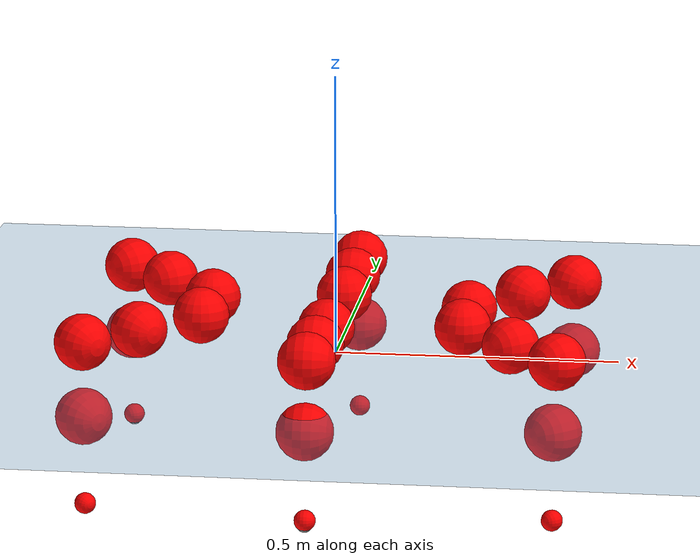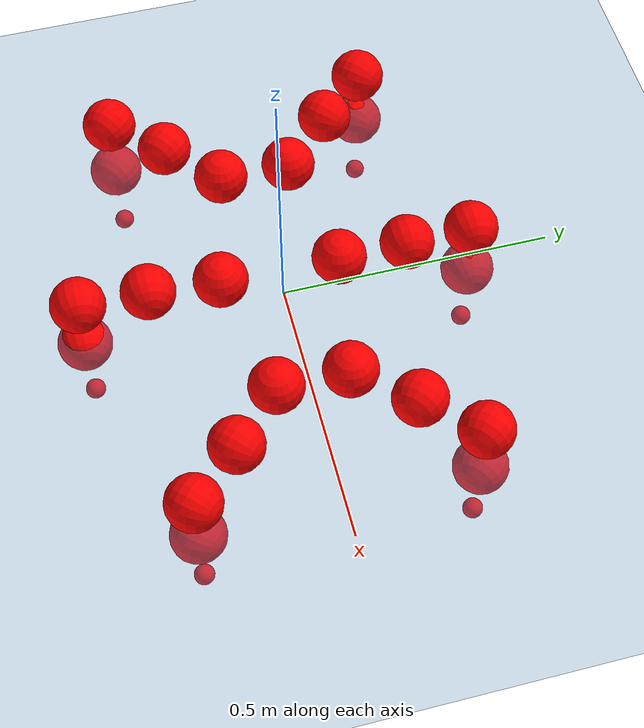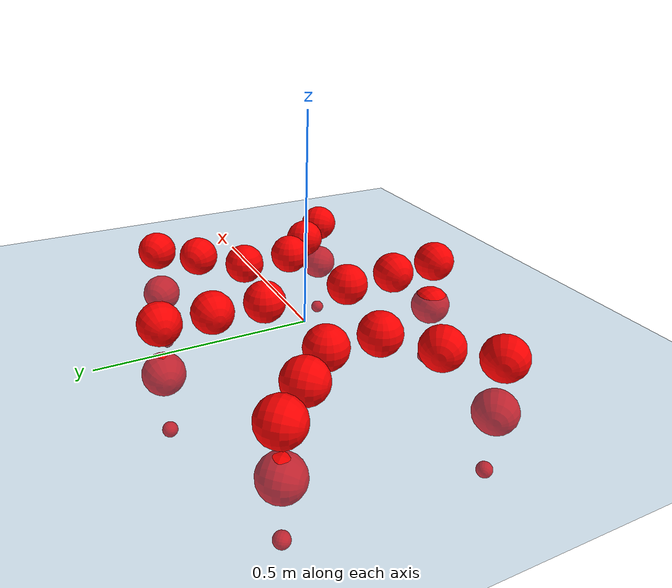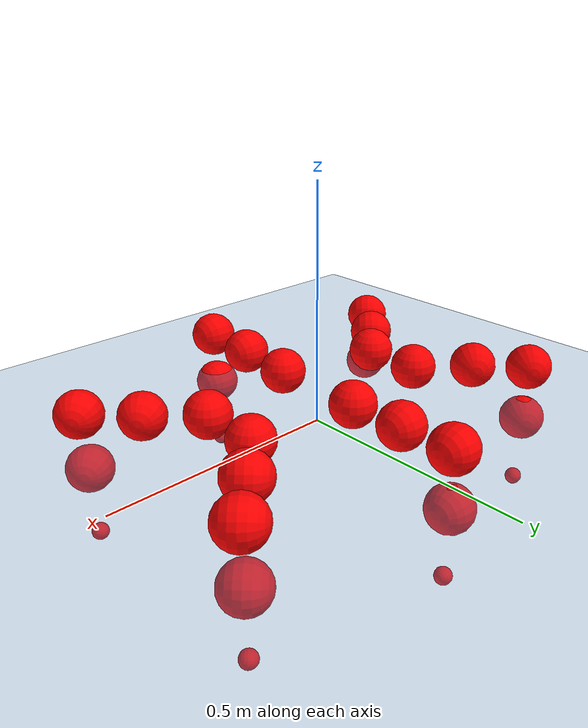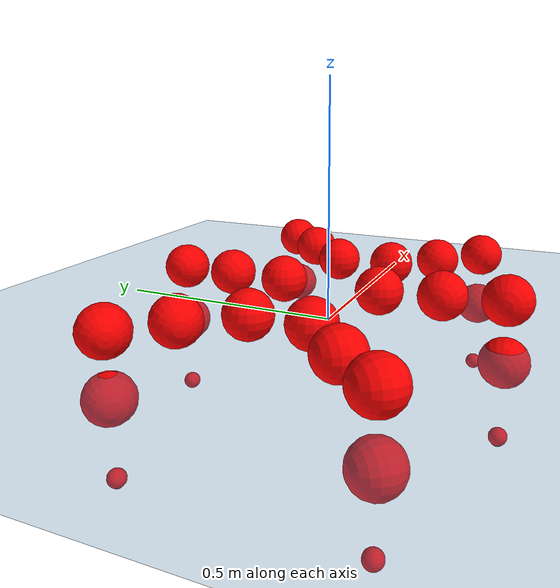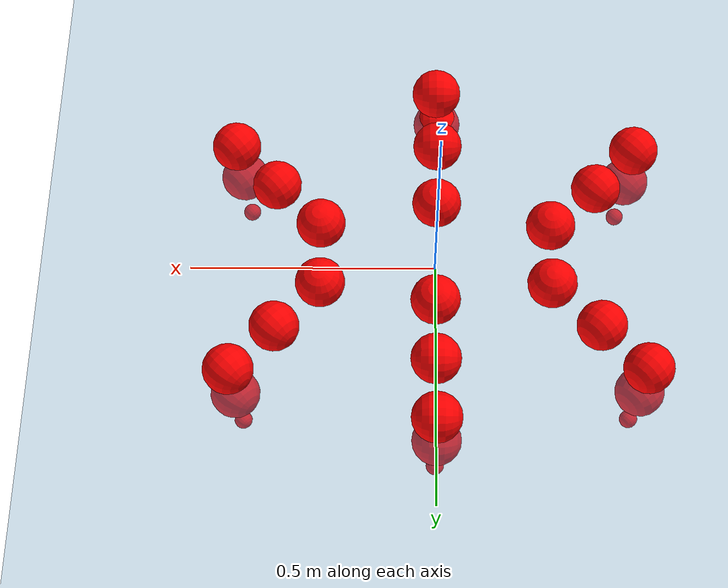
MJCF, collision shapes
<mujoco model="Golem">
  <compiler angle="radian" assetdir="assets" balanceinertia="true" inertiafromgeom="false"/>

  <option timestep="0.005" density="1.2" viscosity="2e-05"/>

  <size nkey="1"/>

  <visual>
    <quality shadowsize="8192"/>
    <map shadowclip="0.5"/>
  </visual>

  <default>
    <default class="/">
      <joint armature="0.01" damping="0.01" frictionloss="0.01"/>
      <geom contype="0" conaffinity="0" group="1" solref="-1000 -80"/>
      <site size="0.01 0.005 0.005" group="5"/>
      <general forcelimited="true" biastype="affine" gainprm="25" biasprm="0 -25 -0.5"/>
      <default class="visual">
        <geom type="mesh" group="2"/>
      </default>
      <default class="collision">
        <geom group="3"/>
      </default>
      <default class="foot">
        <geom size="0.01 0 0" condim="6" group="4" priority="1" solimp="0.015 1 0.01"/>
      </default>
      <default class="reward_collision_sphere">
        <geom group="5" rgba="1 0 0 1"/>
      </default>
    </default>
  </default>

  <asset>
    <texture type="skybox" colorspace="auto" name="//unnamed_texture_0" builtin="gradient" rgb1="0.95 0.95 0.95" rgb2="0.95 0.95 0.95" width="100" height="600"/>
    <texture type="2d" colorspace="auto" name="texplane" builtin="checker" rgb1="0.345 0.575 0.748" rgb2="0.345 0.575 0.748" markrgb="1 1 1" width="512" height="512"/>
    <material name="MatPlane" class="/" texture="texplane" texuniform="true" texrepeat="2 2" specular="0.9"/>
    <mesh name="body" class="/" file="body.stl" scale="0.001 0.001 0.001"/>
    <mesh name="coxa" class="/" file="coxa.stl" scale="0.001 0.001 0.001"/>
    <mesh name="femur" class="/" file="femur.stl" scale="0.001 0.001 0.001"/>
    <mesh name="tibia" class="/" file="tibia.stl" scale="0.001 0.001 0.001"/>
    <mesh name="tarsus" class="/" file="tarsus.stl" scale="0.001 0.001 0.001"/>
  </asset>

  <worldbody>
    <geom name="floor" class="/" size="100 100 0.125" type="plane" group="0" material="MatPlane"/>
    <light name="toplight_shadow" class="/" pos="0 0 5" dir="0.0990148 0.0990148 -0.990148" type="directional" ambient="0.04 0.04 0.04" diffuse="0.55 0.55 0.55" specular="0.12 0.12 0.12"/>
    <light name="toplight_fill" class="/" pos="0 0 5" dir="0.0990148 0.0990148 -0.990148" type="directional" castshadow="false" ambient="0.04 0.04 0.04" diffuse="0.3 0.3 0.3" specular="0.08 0.08 0.08"/>
    <body name="trunk" pos="0.000417744 -0.00021373 0.00240895" quat="1 -3.81414e-05 0.000371751 0.000625154">
      <inertial pos="-0.000166407 0.00210536 0.00452758" quat="1 -4.40166e-05 0.00014937 0.00022137" mass="6.99896" diaginertia="0.0710305 0.0203509 0.0166473"/>
      <joint name="//unnamed_joint_0" type="free"/>
      <geom name="//unnamed_geom_1" class="/" pos="0 0 0.0709207" quat="1 0 0 0" type="mesh" rgba="0.9 0.9 0.9 1" mesh="body"/>
      <site name="imu" class="/" pos="0.179379 -0.00197838 0.113564" size="0.0124136"/>
      <camera name="track" class="/" pos="0 -2.28612 0" quat="0.707107 0.707107 0 0" mode="trackcom"/>
      <camera name="ego_camera" class="/" pos="0.191475 0 0.110814" quat="-0.5 -0.5 0.5 0.5"/>
      <body name="coxa_RR" pos="-0.263012 -0.0923936 0.0746831" quat="0.382233 -0.000493585 -0.00063394 -0.924065">
        <inertial pos="0.000267029 0.0021732 0.00201043" quat="0.999996 -0.00135903 0.000349069 -0.00246542" mass="0.39516" diaginertia="0.0715504 0.0204286 0.0184802"/>
        <joint name="coxa_joint_RR" class="/" pos="0 0 0" axis="0.0091354 0.00482016 -0.999947" stiffness="0.00502214" range="-3.14927 3.10804" armature="0.0109922" damping="0.012305" frictionloss="0.0114261"/>
        <geom name="//unnamed_geom_2" class="/" type="mesh" rgba="0.2 0.2 0.2 1" mesh="coxa"/>
        <geom name="//unnamed_geom_3" class="reward_collision_sphere" size="0.0496544" pos="-0.0441865 0 0"/>
        <body name="femur_RR" pos="0.0854638 -0.00552592 -0.00435965" quat="0.500012 -0.499977 0.499999 0.500012">
          <inertial pos="0.00486117 -0.000303005 0.00597211" quat="0.999659 0.00606065 0.0247756 0.00550765" mass="0.390833" diaginertia="0.0710838 0.0198474 0.0167464"/>
          <joint name="femur_joint_RR" class="/" pos="0 0 0" axis="-0.00349911 0.00405673 -0.999986" range="-3.18635 3.15534" armature="0.0115811" damping="0.0188602" frictionloss="0.0121456"/>
          <geom name="//unnamed_geom_4" class="/" type="mesh" rgba="0.9 0.9 0.9 1" mesh="femur"/>
          <geom name="//unnamed_geom_5" class="reward_collision_sphere" size="0.0496544"/>
          <body name="tibia_RR" pos="6.25698e-05 -0.122087 0.00508514" quat="-0.000550995 1 -0.00022614 -0.0007661">
            <inertial pos="-0.000520643 -0.000666246 0.00288731" quat="0.999999 -0.000563487 0.00122197 -1.64518e-05" mass="0.358376" diaginertia="0.0617445 0.0176467 0.0151955"/>
            <joint name="tibia_joint_RR" class="/" pos="0 0 0" axis="-0.0091629 -0.00484954 0.999946" stiffness="0.00408263" range="-3.14209 3.14852" armature="0.0116004" damping="0" frictionloss="0.0134624"/>
            <geom name="//unnamed_geom_6" class="/" type="mesh" rgba="0.2 0.2 0.2 1" mesh="tibia"/>
            <geom name="//unnamed_geom_7" class="reward_collision_sphere" size="0.0496544"/>
            <body name="tarsus_RR" pos="0.133289 0.000769644 -0.00160667" quat="1 4.94153e-05 4.63756e-05 8.51294e-05">
              <inertial pos="0.0881396 0.000750257 1.70065e-05" quat="0.496844 0.505303 0.516426 0.480747" mass="0.35409" diaginertia="0.0708137 0.0196858 0.0161221"/>
              <joint name="tarsus_joint_RR" class="/" pos="0 0 0" axis="-0.00909416 0.0263306 0.999612" stiffness="0.00866591" range="-3.16214 3.14512" armature="0.0114171" damping="0.0401238" frictionloss="0.0138619"/>
              <geom name="//unnamed_geom_8" class="/" type="mesh" rgba="0.9 0.9 0.9 1" mesh="tarsus"/>
              <geom name="foot_1" class="foot" size="0.0118089" pos="0.164963 0 0" quat="0 -0.707107 0 0.707107"/>
              <geom name="//unnamed_geom_10" class="reward_collision_sphere" size="0.0496544"/>
              <geom name="//unnamed_geom_11" class="reward_collision_sphere" size="0.0186204" pos="0.158335 0 0"/>
              <site name="foot_1" class="foot" pos="0.164963 0 0" quat="0 -0.707107 0 0.707107" size="0.0124136"/>
            </body>
          </body>
        </body>
      </body>
      <body name="coxa_RM" pos="-0.00264202 -0.155643 0.0760447" quat="0.708322 -0.00193862 0.000850711 -0.705886">
        <inertial pos="0.00223294 -6.62282e-05 0.0038379" quat="0.999975 -0.0042366 -0.00562862 0.000140792" mass="0.381069" diaginertia="0.0737067 0.0195973 0.0161255"/>
        <joint name="coxa_joint_RM" class="/" pos="0 0 0" axis="-0.0020468 -0.00146747 -0.999997" range="-3.18749 3.09992" armature="0.0137778" damping="0.0102123" frictionloss="0.01151"/>
        <geom name="//unnamed_geom_12" class="/" type="mesh" rgba="0.2 0.2 0.2 1" mesh="coxa"/>
        <geom name="//unnamed_geom_13" class="reward_collision_sphere" size="0.0496544" pos="-0.0441865 0 0"/>
        <body name="femur_RM" pos="0.0850898 -0.00267419 0.00660215" quat="0.500066 -0.500131 0.499552 0.500251">
          <inertial pos="-0.00415989 -0.00065632 0.000126715" quat="0.999711 -0.0183611 -0.0141157 0.00647472" mass="0.372267" diaginertia="0.071645 0.020097 0.0162838"/>
          <joint name="femur_joint_RM" class="/" pos="0 0 0" axis="0.0112226 -0.00135807 -0.999936" stiffness="0.00036118" range="-3.13495 3.15688" armature="0.0135294" damping="0.0250318" frictionloss="0.0112986"/>
          <geom name="//unnamed_geom_14" class="/" type="mesh" rgba="0.9 0.9 0.9 1" mesh="femur"/>
          <geom name="//unnamed_geom_15" class="reward_collision_sphere" size="0.0496544"/>
          <body name="tibia_RM" pos="-0.00609584 -0.123573 0.00113623" quat="-3.35256e-06 1 9.17928e-05 -0.000269708">
            <inertial pos="0.00493152 0.00174174 -0.000116542" quat="0.999934 -0.00562768 -0.00920911 -0.00403156" mass="0.395759" diaginertia="0.0697078 0.0203803 0.0182131"/>
            <joint name="tibia_joint_RM" class="/" pos="0 0 0" axis="-0.00236663 -0.00175126 0.999996" range="-3.12651 3.10416" armature="0.0118669" damping="0.0161207" frictionloss="0.0112782"/>
            <geom name="//unnamed_geom_16" class="/" type="mesh" rgba="0.2 0.2 0.2 1" mesh="tibia"/>
            <geom name="//unnamed_geom_17" class="reward_collision_sphere" size="0.0496544"/>
            <body name="tarsus_RM" pos="0.124774 0.00182691 0.00256021" quat="1 -0.000551687 -0.000120215 -9.68374e-05">
              <inertial pos="0.0866132 -0.00197793 -0.00123232" quat="0.492727 0.509619 0.499235 0.49827" mass="0.400947" diaginertia="0.0739888 0.0202129 0.0168532"/>
              <joint name="tarsus_joint_RM" class="/" pos="0 0 0" axis="0.0021039 -0.00755261 0.999969" stiffness="0.00302805" range="-3.1124 3.1424" armature="0.012487" damping="0.0190922" frictionloss="0.0132538"/>
              <geom name="//unnamed_geom_18" class="/" type="mesh" rgba="0.9 0.9 0.9 1" mesh="tarsus"/>
              <geom name="foot_2" class="foot" size="0.0140954" pos="0.164963 0 0" quat="0 -0.707107 0 0.707107"/>
              <geom name="//unnamed_geom_20" class="reward_collision_sphere" size="0.0496544"/>
              <geom name="//unnamed_geom_21" class="reward_collision_sphere" size="0.0186204" pos="0.158335 0 0"/>
              <site name="foot_2" class="foot" pos="0.164963 0 0" quat="0 -0.707107 0 0.707107" size="0.0124136"/>
            </body>
          </body>
        </body>
      </body>
      <body name="coxa_RF" pos="0.262258 -0.0979937 0.0711349" quat="0.924091 0.000114559 0.000103093 -0.382173">
        <inertial pos="0.00563781 0.00277175 0.00140468" quat="0.999918 -0.00839794 -0.00836832 -0.00484251" mass="0.358787" diaginertia="0.0709017 0.0209399 0.0172208"/>
        <joint name="coxa_joint_RF" class="/" pos="0 0 0" axis="-0.000991307 -0.00598486 -0.999982" stiffness="0.0039985" range="-3.16956 3.14688" armature="0.0115877" damping="0.0101682" frictionloss="0.0111058"/>
        <geom name="//unnamed_geom_22" class="/" type="mesh" rgba="0.2 0.2 0.2 1" mesh="coxa"/>
        <geom name="//unnamed_geom_23" class="reward_collision_sphere" size="0.0496544" pos="-0.0441865 0 0"/>
        <body name="femur_RF" pos="0.0844803 0.0013233 -0.00388431" quat="0.500057 -0.500634 0.500153 0.499155">
          <inertial pos="0.000349687 -0.00480542 0.000711548" quat="0.999971 0.00751984 0.000709872 -0.000959584" mass="0.381867" diaginertia="0.0684216 0.0199203 0.0161487"/>
          <joint name="femur_joint_RF" class="/" pos="0 0 0" axis="-7.57203e-05 0.000184231 -1" stiffness="0.0232005" range="-3.09029 3.14922" armature="0.0118055" damping="0.0162636" frictionloss="0.010923"/>
          <geom name="//unnamed_geom_24" class="/" type="mesh" rgba="0.9 0.9 0.9 1" mesh="femur"/>
          <geom name="//unnamed_geom_25" class="reward_collision_sphere" size="0.0496544"/>
          <body name="tibia_RF" pos="-0.000715408 -0.125761 -0.00240688" quat="1.28956e-05 1 0.000877099 -0.000185942">
            <inertial pos="0.00386396 0.00132329 -0.00299798" quat="0.999998 0.00146761 0.00016132 -0.00130536" mass="0.37876" diaginertia="0.0702072 0.0199424 0.0167783"/>
            <joint name="tibia_joint_RF" class="/" pos="0 0 0" axis="-0.00920231 -0.0106715 0.999901" stiffness="0.00881872" range="-3.12116 3.1611" armature="0.0110045" damping="0.0428974" frictionloss="0.0130368"/>
            <geom name="//unnamed_geom_26" class="/" type="mesh" rgba="0.2 0.2 0.2 1" mesh="tibia"/>
            <geom name="//unnamed_geom_27" class="reward_collision_sphere" size="0.0496544"/>
            <body name="tarsus_RF" pos="0.12618 -0.00364682 0.00317542" quat="1 -6.25578e-05 9.87485e-05 0.000255428">
              <inertial pos="0.0852697 0.000380976 -0.000798064" quat="0.49364 0.494293 0.507617 0.504301" mass="0.395634" diaginertia="0.0711637 0.0183926 0.0173201"/>
              <joint name="tarsus_joint_RF" class="/" pos="0 0 0" axis="0.00361536 -0.00264255 0.99999" range="-3.15582 3.12713" armature="0.0112047" damping="0" frictionloss="0.00886617"/>
              <geom name="//unnamed_geom_28" class="/" type="mesh" rgba="0.9 0.9 0.9 1" mesh="tarsus"/>
              <geom name="foot_3" class="foot" size="0.0104919" pos="0.164963 0 0" quat="0 -0.707107 0 0.707107"/>
              <geom name="//unnamed_geom_30" class="reward_collision_sphere" size="0.0496544"/>
              <geom name="//unnamed_geom_31" class="reward_collision_sphere" size="0.0186204" pos="0.158335 0 0"/>
              <site name="foot_3" class="foot" pos="0.164963 0 0" quat="0 -0.707107 0 0.707107" size="0.0124136"/>
            </body>
          </body>
        </body>
      </body>
      <body name="coxa_LR" pos="-0.261872 0.0978499 0.0732965" quat="0.383947 0.00119965 3.44483e-05 0.923354">
        <inertial pos="-0.00205546 0.00229329 0.00526702" quat="0.999963 0.00235324 0.00811709 -0.00126438" mass="0.425836" diaginertia="0.0752416 0.021251 0.0186251"/>
        <joint name="coxa_joint_LR" class="/" pos="0 0 0" axis="0.00635571 -0.00118975 -0.999979" range="-3.18444 3.03158" armature="0.0113471" damping="0.0124955" frictionloss="0.0157144"/>
        <geom name="//unnamed_geom_32" class="/" type="mesh" rgba="0.2 0.2 0.2 1" mesh="coxa"/>
        <geom name="//unnamed_geom_33" class="reward_collision_sphere" size="0.0496544" pos="-0.0441865 0 0"/>
        <body name="femur_LR" pos="0.0871247 -0.000127725 0.00483149" quat="0.499173 -0.499937 0.500635 0.500254">
          <inertial pos="-0.000464535 -0.00179144 -0.00146628" quat="0.999998 -0.00118724 -0.00160773 0.000265866" mass="0.38102" diaginertia="0.0674748 0.017988 0.0169212"/>
          <joint name="femur_joint_LR" class="/" pos="0 0 0" axis="0.00672742 0.00474765 0.999966" stiffness="0.00584346" range="-3.11634 3.17233" armature="0.0120542" damping="0.0131099" frictionloss="0.0110095"/>
          <geom name="//unnamed_geom_34" class="/" type="mesh" rgba="0.9 0.9 0.9 1" mesh="femur"/>
          <geom name="//unnamed_geom_35" class="reward_collision_sphere" size="0.0496544"/>
          <body name="tibia_LR" pos="0.00248167 -0.123202 -0.00160649" quat="-0.000475855 1 -8.37863e-05 -0.000706374">
            <inertial pos="-0.000216656 -0.00440807 -0.000186664" quat="0.999951 0.00803281 -0.00287917 -0.00508566" mass="0.381554" diaginertia="0.0633862 0.0186507 0.0175465"/>
            <joint name="tibia_joint_LR" class="/" pos="0 0 0" axis="0.00089093 -0.00179775 -0.999998" range="-3.12985 3.1548" armature="0.0138325" damping="0" frictionloss="0.0126978"/>
            <geom name="//unnamed_geom_36" class="/" type="mesh" rgba="0.2 0.2 0.2 1" mesh="tibia"/>
            <geom name="//unnamed_geom_37" class="reward_collision_sphere" size="0.0496544"/>
            <body name="tarsus_LR" pos="0.126162 -0.000539273 -0.00087204" quat="1 -0.000179132 -2.4416e-05 -0.000671219">
              <inertial pos="0.0872331 0.000268469 -0.00207824" quat="0.503729 0.501459 0.499429 0.495344" mass="0.402855" diaginertia="0.0726563 0.0208783 0.0179482"/>
              <joint name="tarsus_joint_LR" class="/" pos="0 0 0" axis="0.00336004 -0.00230751 -0.999992" range="-3.18769 3.09184" armature="0.0159326" damping="0.0342538" frictionloss="0.0111641"/>
              <geom name="//unnamed_geom_38" class="/" type="mesh" rgba="0.9 0.9 0.9 1" mesh="tarsus"/>
              <geom name="foot_4" class="foot" size="0.0137146" pos="0.164963 0 0" quat="0.707107 0 -0.707107 0"/>
              <geom name="//unnamed_geom_40" class="reward_collision_sphere" size="0.0496544"/>
              <geom name="//unnamed_geom_41" class="reward_collision_sphere" size="0.0186204" pos="0.158335 0 0"/>
              <site name="foot_4" class="foot" pos="0.164963 0 0" quat="0.707107 0 -0.707107 0" size="0.0124136"/>
            </body>
          </body>
        </body>
      </body>
      <body name="coxa_LM" pos="0.000830989 0.147924 0.074971" quat="0.708088 -0.00270034 -0.000973418 0.706118">
        <inertial pos="-0.00250178 0.00347371 -0.000131716" quat="0.999928 -0.00408549 0.00342635 -0.0107355" mass="0.377495" diaginertia="0.0717718 0.0202467 0.0168577"/>
        <joint name="coxa_joint_LM" class="/" pos="0 0 0" axis="0.0070336 -0.00398741 -0.999967" range="-3.13572 3.12785" armature="0.00897903" damping="0.00558551" frictionloss="0.0137553"/>
        <geom name="//unnamed_geom_42" class="/" type="mesh" rgba="0.2 0.2 0.2 1" mesh="coxa"/>
        <geom name="//unnamed_geom_43" class="reward_collision_sphere" size="0.0496544" pos="-0.0441865 0 0"/>
        <body name="femur_LM" pos="0.0816975 0.000656814 0.0016027" quat="0.500068 -0.499797 0.499645 0.500489">
          <inertial pos="0.00223451 -0.000382544 0.00358377" quat="0.999999 -0.000224405 0.000111755 -0.00115977" mass="0.362424" diaginertia="0.0664127 0.0197721 0.0165037"/>
          <joint name="femur_joint_LM" class="/" pos="0 0 0" axis="-0.00804043 -0.00344545 0.999962" stiffness="0.0023547" range="-3.14322 3.18593" armature="0.0121807" damping="0" frictionloss="0.0126209"/>
          <geom name="//unnamed_geom_44" class="/" type="mesh" rgba="0.9 0.9 0.9 1" mesh="femur"/>
          <geom name="//unnamed_geom_45" class="reward_collision_sphere" size="0.0496544"/>
          <body name="tibia_LM" pos="-0.000609042 -0.120268 0.00123215" quat="-0.000445908 1 -0.000214821 0.000756746">
            <inertial pos="-0.00493152 -0.00556025 -0.00595634" quat="0.999996 0.00117291 -0.000226881 -0.00271393" mass="0.37874" diaginertia="0.0673504 0.0200726 0.016243"/>
            <joint name="tibia_joint_LM" class="/" pos="0 0 0" axis="0.00141887 0.00134191 -0.999998" stiffness="0.0100652" range="-3.09177 3.1241" armature="0.0120574" damping="0.00928057" frictionloss="0.0134133"/>
            <geom name="//unnamed_geom_46" class="/" type="mesh" rgba="0.2 0.2 0.2 1" mesh="tibia"/>
            <geom name="//unnamed_geom_47" class="reward_collision_sphere" size="0.0496544"/>
            <body name="tarsus_LM" pos="0.127785 0.00259529 -0.00207112" quat="1 -7.37213e-05 0.000146965 1.70531e-05">
              <inertial pos="0.0902991 0.00174239 -1.95675e-06" quat="0.505217 0.496398 0.494343 0.503955" mass="0.359444" diaginertia="0.0683608 0.0167913 0.015346"/>
              <joint name="tarsus_joint_LM" class="/" pos="0 0 0" axis="-0.0104199 0.00377282 -0.999939" range="-3.00638 3.18251" armature="0.0123818" damping="0.000976125" frictionloss="0.0119823"/>
              <geom name="//unnamed_geom_48" class="/" type="mesh" rgba="0.9 0.9 0.9 1" mesh="tarsus"/>
              <geom name="foot_5" class="foot" size="0.0121494" pos="0.164963 0 0" quat="0.707107 0 -0.707107 0"/>
              <geom name="//unnamed_geom_50" class="reward_collision_sphere" size="0.0496544"/>
              <geom name="//unnamed_geom_51" class="reward_collision_sphere" size="0.0186204" pos="0.158335 0 0"/>
              <site name="foot_5" class="foot" pos="0.164963 0 0" quat="0.707107 0 -0.707107 0" size="0.0124136"/>
            </body>
          </body>
        </body>
      </body>
      <body name="coxa_LF" pos="0.260751 0.0950666 0.068107" quat="0.923595 -0.00173552 0.000118739 0.383365">
        <inertial pos="0.000827569 -0.00522909 3.1999e-05" quat="0.99999 0.00386567 -0.000219726 -0.00203882" mass="0.365843" diaginertia="0.0646652 0.0178122 0.0155239"/>
        <joint name="coxa_joint_LF" class="/" pos="0 0 0" axis="5.28371e-05 4.26333e-05 -1" stiffness="0.00451051" range="-3.15565 3.17088" armature="0.00863525" damping="0.0233381" frictionloss="0.0138298"/>
        <geom name="//unnamed_geom_52" class="/" type="mesh" rgba="0.2 0.2 0.2 1" mesh="coxa"/>
        <geom name="//unnamed_geom_53" class="reward_collision_sphere" size="0.0496544" pos="-0.0441865 0 0"/>
        <body name="femur_LF" pos="0.0860642 0.00707428 0.00451921" quat="0.499807 -0.499793 0.500899 0.4995">
          <inertial pos="-0.000646989 -0.00276939 -0.00589959" quat="0.999876 -0.0141313 -0.00667141 -0.00188972" mass="0.392606" diaginertia="0.069632 0.0180578 0.0164242"/>
          <joint name="femur_joint_LF" class="/" pos="0 0 0" axis="-0.00511756 -0.00829518 0.999952" stiffness="0.0175845" range="-3.13244 3.23483" armature="0.0124338" damping="0.00441341" frictionloss="0.0139184"/>
          <geom name="//unnamed_geom_54" class="/" type="mesh" rgba="0.9 0.9 0.9 1" mesh="femur"/>
          <geom name="//unnamed_geom_55" class="reward_collision_sphere" size="0.0496544"/>
          <body name="tibia_LF" pos="0.00146287 -0.123917 0.00331932" quat="0.00157875 0.999999 0.000230074 -0.000465768">
            <inertial pos="0.00250736 0.00440697 -0.000412954" quat="0.999934 -0.00790726 0.00418307 -0.00722992" mass="0.381663" diaginertia="0.0690438 0.0196222 0.0163151"/>
            <joint name="tibia_joint_LF" class="/" pos="0 0 0" axis="0.0022952 0.0119416 -0.999926" range="-3.08737 3.16651" armature="0.0122076" damping="0.0116347" frictionloss="0.0100272"/>
            <geom name="//unnamed_geom_56" class="/" type="mesh" rgba="0.2 0.2 0.2 1" mesh="tibia"/>
            <geom name="//unnamed_geom_57" class="reward_collision_sphere" size="0.0496544"/>
            <body name="tarsus_LF" pos="0.1287 -0.000681243 -0.00180913" quat="0.999995 0.000262312 -0.000832612 -0.00298759">
              <inertial pos="0.0889326 -0.000991701 -0.000619182" quat="0.503254 0.492959 0.500476 0.50324" mass="0.37748" diaginertia="0.0734246 0.0204699 0.0178662"/>
              <joint name="tarsus_joint_LF" class="/" pos="0 0 0" axis="-0.0264321 0.0130893 -0.999565" stiffness="0.0142566" range="-3.1012 3.18906" armature="0.0136135" damping="0.0353276" frictionloss="0.0129551"/>
              <geom name="//unnamed_geom_58" class="/" type="mesh" rgba="0.9 0.9 0.9 1" mesh="tarsus"/>
              <geom name="foot_6" class="foot" size="0.013601" pos="0.164963 0 0" quat="0.707107 0 -0.707107 0"/>
              <geom name="//unnamed_geom_60" class="reward_collision_sphere" size="0.0496544"/>
              <geom name="//unnamed_geom_61" class="reward_collision_sphere" size="0.0186204" pos="0.158335 0 0"/>
              <site name="foot_6" class="foot" pos="0.164963 0 0" quat="0.707107 0 -0.707107 0" size="0.0124136"/>
            </body>
          </body>
        </body>
      </body>
    </body>
  </worldbody>

  <contact>
    <pair class="/" geom1="floor" geom2="foot_1" name="//unnamed_contact_0"/>
    <pair class="/" geom1="floor" geom2="foot_2" name="//unnamed_contact_1"/>
    <pair class="/" geom1="floor" geom2="foot_3" name="//unnamed_contact_2"/>
    <pair class="/" geom1="floor" geom2="foot_4" name="//unnamed_contact_3"/>
    <pair class="/" geom1="floor" geom2="foot_5" name="//unnamed_contact_4"/>
    <pair class="/" geom1="floor" geom2="foot_6" name="//unnamed_contact_5"/>
  </contact>

  <actuator>
    <general name="coxa_joint_RR" class="/" joint="coxa_joint_RR" forcerange="-10.5994 10.5994" gainprm="30.2704" biasprm="0 -30.2704 -0.620724"/>
    <general name="femur_joint_RR" class="/" joint="femur_joint_RR" forcerange="-9.45969 9.45969" gainprm="30.2704" biasprm="0 -30.2704 -0.620724"/>
    <general name="tibia_joint_RR" class="/" joint="tibia_joint_RR" forcerange="-10.9564 10.9564" gainprm="30.2704" biasprm="0 -30.2704 -0.620724"/>
    <general name="tarsus_joint_RR" class="/" joint="tarsus_joint_RR" forcerange="-9.24923 9.24923" gainprm="30.2704" biasprm="0 -30.2704 -0.620724"/>
    <general name="coxa_joint_RM" class="/" joint="coxa_joint_RM" forcerange="-9.14368 9.14368" gainprm="30.2704" biasprm="0 -30.2704 -0.620724"/>
    <general name="femur_joint_RM" class="/" joint="femur_joint_RM" forcerange="-8.94621 8.94621" gainprm="30.2704" biasprm="0 -30.2704 -0.620724"/>
    <general name="tibia_joint_RM" class="/" joint="tibia_joint_RM" forcerange="-10.269 10.269" gainprm="30.2704" biasprm="0 -30.2704 -0.620724"/>
    <general name="tarsus_joint_RM" class="/" joint="tarsus_joint_RM" forcerange="-7.29918 7.29918" gainprm="30.2704" biasprm="0 -30.2704 -0.620724"/>
    <general name="coxa_joint_RF" class="/" joint="coxa_joint_RF" forcerange="-9.89049 9.89049" gainprm="30.2704" biasprm="0 -30.2704 -0.620724"/>
    <general name="femur_joint_RF" class="/" joint="femur_joint_RF" forcerange="-8.91581 8.91581" gainprm="30.2704" biasprm="0 -30.2704 -0.620724"/>
    <general name="tibia_joint_RF" class="/" joint="tibia_joint_RF" forcerange="-7.62438 7.62438" gainprm="30.2704" biasprm="0 -30.2704 -0.620724"/>
    <general name="tarsus_joint_RF" class="/" joint="tarsus_joint_RF" forcerange="-9.50753 9.50753" gainprm="30.2704" biasprm="0 -30.2704 -0.620724"/>
    <general name="coxa_joint_LR" class="/" joint="coxa_joint_LR" forcerange="-9.11208 9.11208" gainprm="30.2704" biasprm="0 -30.2704 -0.620724"/>
    <general name="femur_joint_LR" class="/" joint="femur_joint_LR" forcerange="-9.85508 9.85508" gainprm="30.2704" biasprm="0 -30.2704 -0.620724"/>
    <general name="tibia_joint_LR" class="/" joint="tibia_joint_LR" forcerange="-8.59357 8.59357" gainprm="30.2704" biasprm="0 -30.2704 -0.620724"/>
    <general name="tarsus_joint_LR" class="/" joint="tarsus_joint_LR" forcerange="-9.25905 9.25905" gainprm="30.2704" biasprm="0 -30.2704 -0.620724"/>
    <general name="coxa_joint_LM" class="/" joint="coxa_joint_LM" forcerange="-8.59558 8.59558" gainprm="30.2704" biasprm="0 -30.2704 -0.620724"/>
    <general name="femur_joint_LM" class="/" joint="femur_joint_LM" forcerange="-8.27083 8.27083" gainprm="30.2704" biasprm="0 -30.2704 -0.620724"/>
    <general name="tibia_joint_LM" class="/" joint="tibia_joint_LM" forcerange="-9.49056 9.49056" gainprm="30.2704" biasprm="0 -30.2704 -0.620724"/>
    <general name="tarsus_joint_LM" class="/" joint="tarsus_joint_LM" forcerange="-8.23069 8.23069" gainprm="30.2704" biasprm="0 -30.2704 -0.620724"/>
    <general name="coxa_joint_LF" class="/" joint="coxa_joint_LF" forcerange="-8.40783 8.40783" gainprm="30.2704" biasprm="0 -30.2704 -0.620724"/>
    <general name="femur_joint_LF" class="/" joint="femur_joint_LF" forcerange="-9.88109 9.88109" gainprm="30.2704" biasprm="0 -30.2704 -0.620724"/>
    <general name="tibia_joint_LF" class="/" joint="tibia_joint_LF" forcerange="-8.82651 8.82651" gainprm="30.2704" biasprm="0 -30.2704 -0.620724"/>
    <general name="tarsus_joint_LF" class="/" joint="tarsus_joint_LF" forcerange="-8.55733 8.55733" gainprm="30.2704" biasprm="0 -30.2704 -0.620724"/>
  </actuator>

  <sensor>
    <gyro site="imu" name="imu_angular_velocity"/>
    <velocimeter site="imu" name="imu_linear_velocity"/>
    <framelinvel objtype="site" objname="foot_1" name="foot_1_global_linear_velocity"/>
    <framelinvel objtype="site" objname="foot_2" name="foot_2_global_linear_velocity"/>
    <framelinvel objtype="site" objname="foot_3" name="foot_3_global_linear_velocity"/>
    <framelinvel objtype="site" objname="foot_4" name="foot_4_global_linear_velocity"/>
    <framelinvel objtype="site" objname="foot_5" name="foot_5_global_linear_velocity"/>
    <framelinvel objtype="site" objname="foot_6" name="foot_6_global_linear_velocity"/>
  </sensor>

  <keyframe>
    <key name="home" qpos="0 0 0.1457 1 0 0 0 0 0 0 0 0 0 0 0 0 0 0 0 0 0 0 0 0 0 0 0 0 0 0 0"/>
  </keyframe>
</mujoco>
